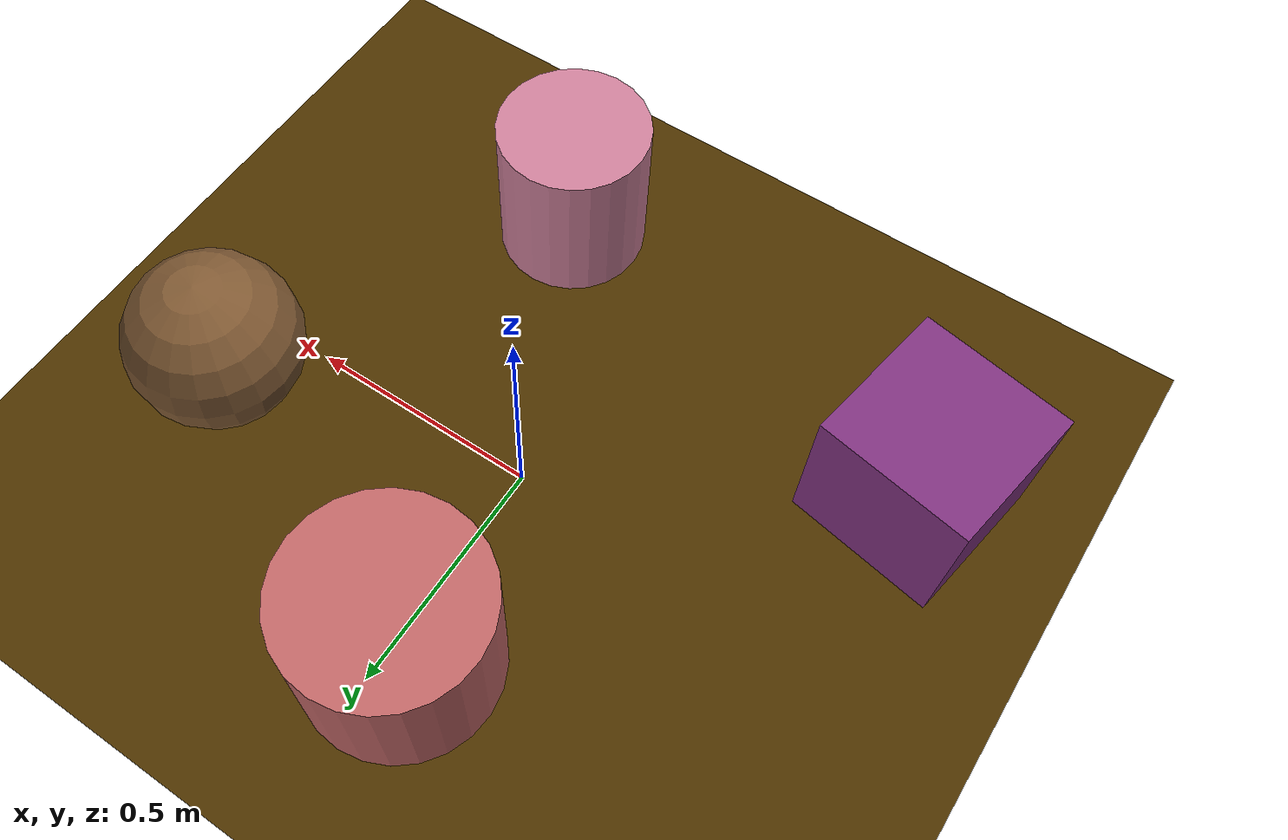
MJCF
<mujoco>
   <asset>
<texture type="skybox" builtin="gradient" rgb1="0.5 0.1 0.4" rgb2="0.8 0.7 0.1" width="256" height="256"/>
<texture name="checker_0" builtin="checker" rgb1="0.6 0.3 0.4" rgb2="0.9 0.5 0.4" width="200" height="200"/>
<texture name="checker_1" builtin="checker" rgb1="0.9 0.7 0.6" rgb2="0.7 0.3 0.6" width="200" height="200"/>
<texture name="flat_2" builtin="flat" rgb1="0.5 0.2 0.5" rgb2="0.5 0.2 0.5"  width="200" height="200"/>
<texture name="gradient_3" builtin="gradient" rgb1="0.1 0.5 0.1" rgb2="0.9 0.2 0.3" width="200" height="200"/><material name="checker_0_mat" reflectance="0" texrepeat="2 2" texture="checker_0" texuniform="false" />
<material name="checker_1_mat" reflectance="0" texrepeat="2 2" texture="checker_1" texuniform="false" />
<material name="flat_2_mat" reflectance="0" texture="flat_2" texuniform="true"/>
<material name="gradient_3_mat" reflectance="0" texture="gradient_3" texuniform="true"/>
   </asset>

   <worldbody>
      <light diffuse=".9 .9 .9" pos="0 0 3" dir="0 0 -1"/>
     <geom type="plane" size="1 1 0.1" rgba="0.3 0.2 0.0 1"/>
<geom type="cylinder" pos="-0.03 0.43 0.16" size="0.2 0.16 0.16" material="checker_0_mat" euler="0 0 77" />
<geom type="cylinder" pos="0.26 -0.57 0.17" size="0.16 0.17 0.17" material="checker_1_mat" euler="0 0 61" />
<geom type="box" pos="-0.66 -0.39 0.16" size="0.16 0.16 0.16" material="flat_2_mat" euler="0 0 80" />
<geom type="sphere" pos="0.62 0.16 0.18" size="0.18 0.18 0.18" material="gradient_3_mat" euler="0 0 0" /><camera euler="60 0 180" fovy="60" name="camera1" pos="-0.2 -1.5 1"></camera>   </worldbody>
</mujoco>
